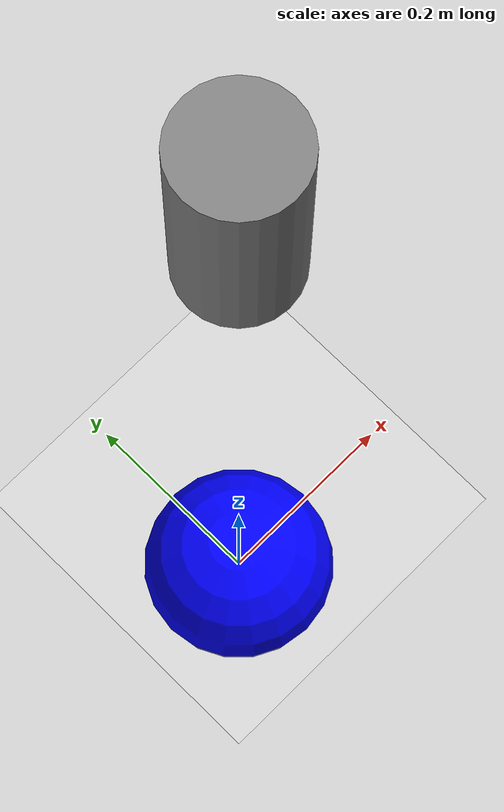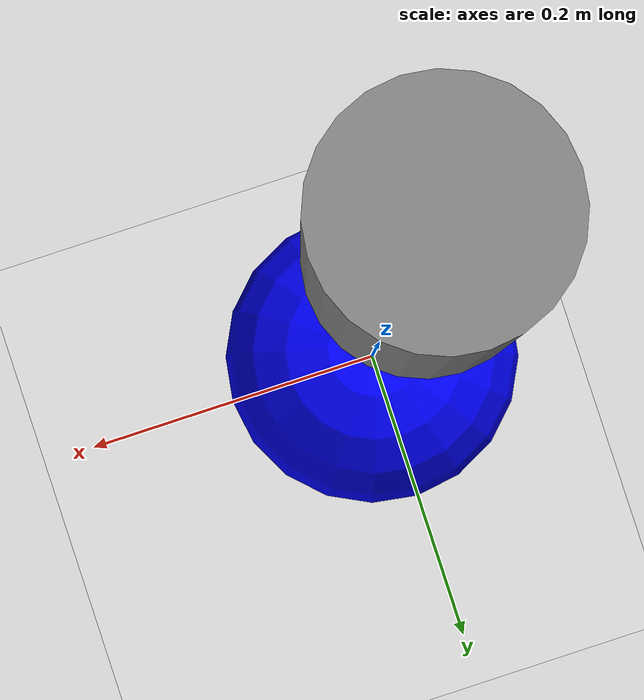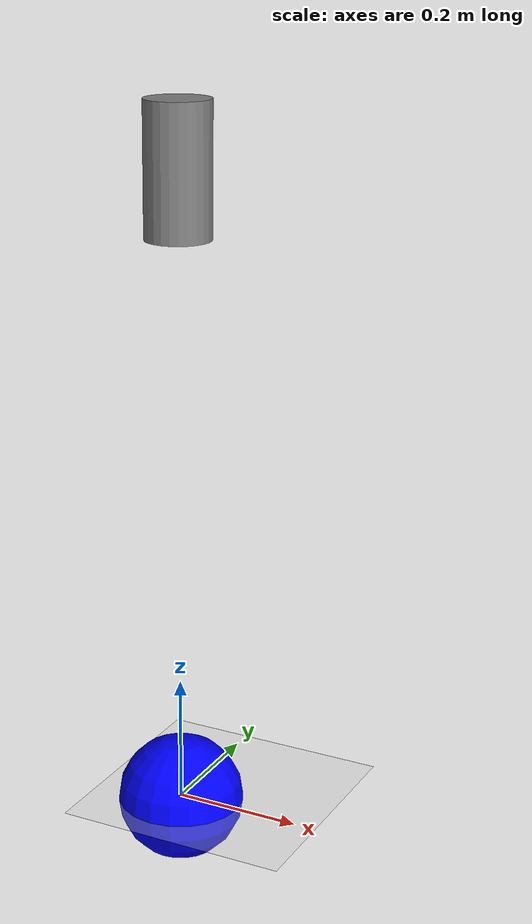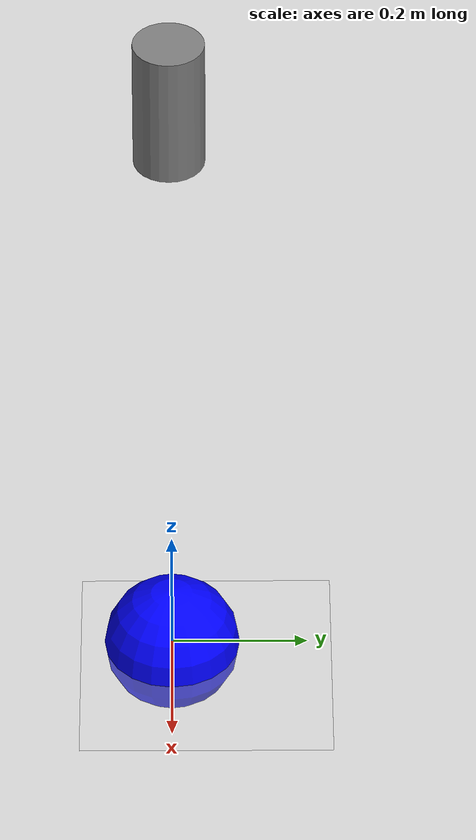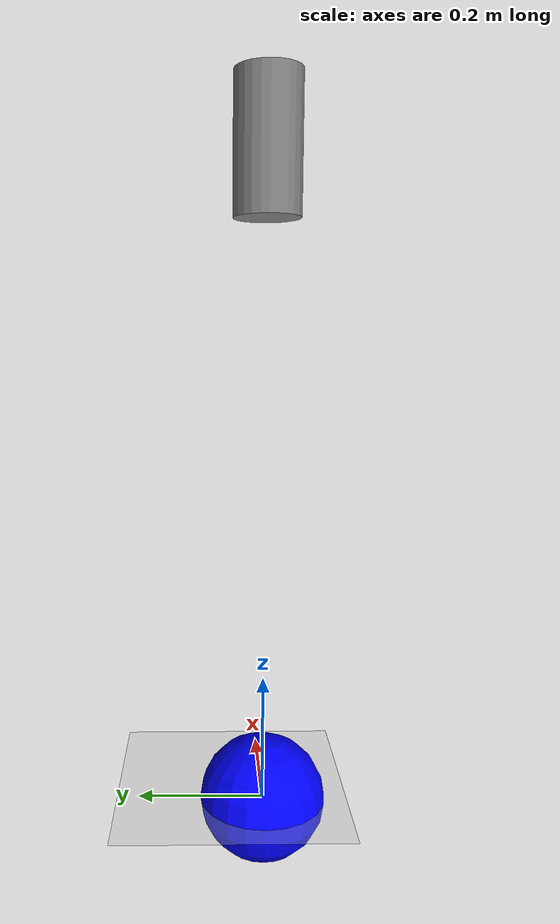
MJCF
<mujoco model="Pendulum">
    <compiler angle="radian" inertiafromgeom="true"/>
    <worldbody>
        <light pos="0 0 1"/>
        <geom type="plane" size="1 1 0.1" rgba="0.9 0.9 0.9 1"/>

        <body name="anchor" pos="0 0 1">
        <geom type="cylinder" size="0.05 0.1" rgba="0.5 0.5 0.5 1"/>

        <body name="bob" pos="0 0 -1">
        <joint name="hinge" type="hinge" axis="1 0 0" pos="0 0 1"/>
        <geom type="sphere" size="0.1" rgba="0 0 1 1"/>
    </body>
</body>
</worldbody>
</mujoco>
